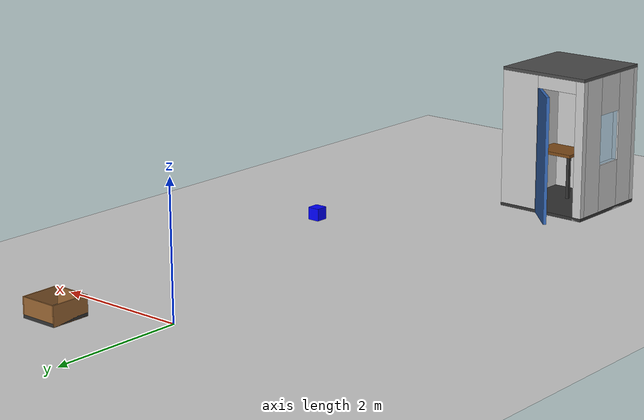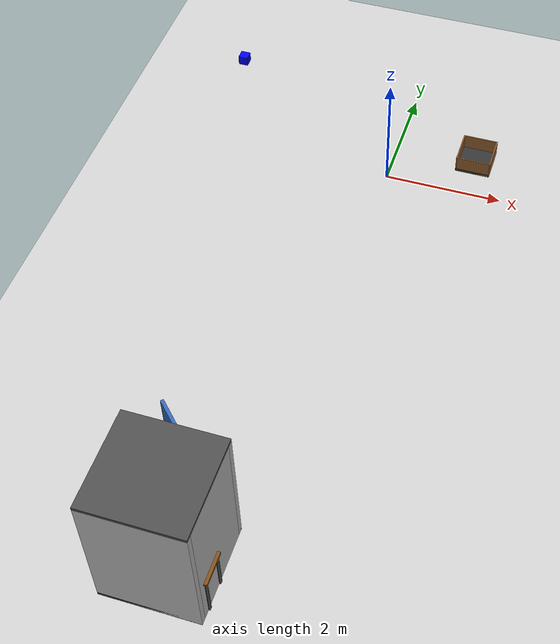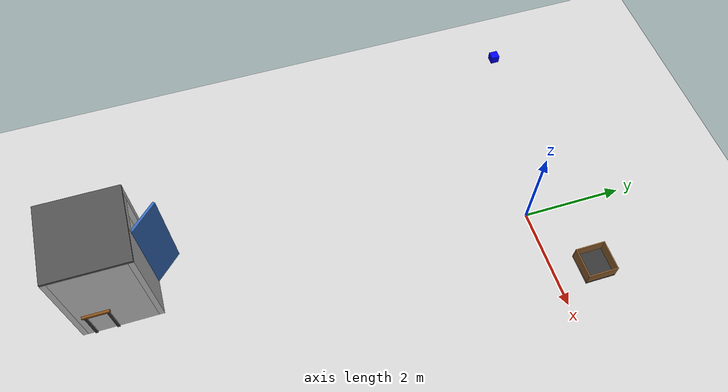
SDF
<sdf version="1.6">
 <world name="default">
  <gravity>0 0 -9.81</gravity>
  <light name="Warehouse_CeilingLight_003" type="point">
   <pose>0 0 9 0 0 0</pose>
   <diffuse>0.5 0.5 0.5 1</diffuse>
   <specular>0.2 0.2 0.2 1</specular>
   <attenuation>
    <range>800</range>
    <constant>0.2</constant>
    <linear>0.01</linear>
    <quadratic>0.001</quadratic>
   </attenuation>
   <direction>0.1 0.1 -1</direction>
  </light>
  <light type="directional" name="sun">
   <pose>0 0 10 0 0 0</pose>
   <diffuse>0.8 0.8 0.8 1</diffuse>
   <specular>0.2 0.2 0.2 1</specular>
   <attenuation>
    <range>1000</range>
    <constant>0.9</constant>
    <linear>0.01</linear>
    <quadratic>0.001</quadratic>
   </attenuation>
   <direction>-0.5 0.1 -0.9</direction>
  </light>
  <model name="ground_plane">
   <static>true</static>
   <link name="link">
    <collision name="collision"><geometry><plane><normal>0 0 1</normal></plane></geometry></collision>
    <visual name="visual">
     <geometry><plane><normal>0 0 1</normal><size>100 100</size></plane></geometry>
     <material>
      <ambient>0.8 0.8 0.8 1</ambient>
      <diffuse>0.8 0.8 0.8 1</diffuse>
      <specular>0.8 0.8 0.8 1</specular>
     </material>
    </visual>
   </link>
  </model>
  <include><uri>model://payload_box</uri><pose>-2.5 0.0 2.0 0 0 0</pose></include>
  <include><uri>model://receptacle_box</uri><name>receptacle_box</name><pose>1.4 0.8 0.0 0 0 0</pose></include>
  <include>
   <uri>model://sgabuzzino</uri>
   <name>il_mio_sgabuzzino_1</name>
   <pose>-0.8 -8.0 0 0 0 3.14</pose>
  </include>
 </world>
</sdf>

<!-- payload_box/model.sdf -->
<sdf version="1.6">
  <model name="payload_box">
      <static>false</static>
      <pose>0 0 0 0 0 0</pose>
      <link name="box_link">
        <gravity>true</gravity>
        <inertial>
          <mass>0.5</mass>
          <inertia>
            <ixx>0.001</ixx>
            <iyy>0.001</iyy>
            <izz>0.001</izz>
            <ixy>0.0</ixy>
            <ixz>0.0</ixz>
            <iyz>0.0</iyz>
          </inertia>
        </inertial>

        <collision name="collision">
          <geometry>
            <box><size>0.15 0.15 0.15</size></box>
          </geometry>
        </collision>

        <visual name="visual">
          <geometry>
            <box><size>0.15 0.15 0.15</size></box>
          </geometry>
          <material>
            <ambient>0 0 1 1</ambient>
            <diffuse>0 0 1 1</diffuse>
          </material>
        </visual>
      </link>
  </model>
</sdf>

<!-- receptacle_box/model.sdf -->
<sdf version="1.6">
  <model name="receptacle_box">
    <static>true</static>
    <link name="link">
      <pose>0 0 0 0 0 0</pose>

      <collision name="base_collision">
        <pose>0 0 0.025 0 0 0</pose>
        <geometry>
          <box>
            <size>0.6 0.6 0.05</size>
          </box>
        </geometry>
      </collision>
      <visual name="base_visual">
        <pose>0 0 0.025 0 0 0</pose>
        <geometry>
          <box>
            <size>0.6 0.6 0.05</size>
          </box>
        </geometry>
       <material>
          <ambient>0.2 0.2 0.2 1</ambient>
          <diffuse>0.2 0.2 0.2 1</diffuse>
          <specular>0.1 0.1 0.1 1</specular>
        </material>
      </visual>

      <collision name="wall1_collision">
        <pose>0.29 0 0.15 0 0 0</pose>
        <geometry>
          <box>
            <size>0.02 0.6 0.3</size>
          </box>
        </geometry>
      </collision>
      <visual name="wall1_visual">
        <pose>0.29 0 0.15 0 0 0</pose>
        <geometry>
          <box>
            <size>0.02 0.6 0.3</size>
          </box>
        </geometry>
        <material>
          <ambient>0.6 0.4 0.2 1</ambient>
          <diffuse>0.6 0.4 0.2 1</diffuse>
        </material>
      </visual>

      <collision name="wall2_collision">
        <pose>-0.29 0 0.15 0 0 0</pose>
        <geometry>
          <box>
            <size>0.02 0.6 0.3</size>
          </box>
        </geometry>
      </collision>
      <visual name="wall2_visual">
        <pose>-0.29 0 0.15 0 0 0</pose>
        <geometry>
          <box>
            <size>0.02 0.6 0.3</size>
          </box>
        </geometry>
        <material>
          <ambient>0.6 0.4 0.2 1</ambient>
          <diffuse>0.6 0.4 0.2 1</diffuse>
        </material>
      </visual>

      <collision name="wall3_collision">
        <pose>0 0.29 0.15 0 0 0</pose>
        <geometry>
          <box>
            <size>0.56 0.02 0.3</size>
          </box>
        </geometry>
      </collision>
      <visual name="wall3_visual">
        <pose>0 0.29 0.15 0 0 0</pose>
        <geometry>
          <box>
            <size>0.56 0.02 0.3</size>
          </box>
        </geometry>
        <material>
          <ambient>0.6 0.4 0.2 1</ambient>
          <diffuse>0.6 0.4 0.2 1</diffuse>
        </material>
      </visual>

      <collision name="wall4_collision">
        <pose>0 -0.29 0.15 0 0 0</pose>
        <geometry>
          <box>
            <size>0.56 0.02 0.3</size>
          </box>
        </geometry>
      </collision>
      <visual name="wall4_visual">
        <pose>0 -0.29 0.15 0 0 0</pose>
        <geometry>
          <box>
            <size>0.56 0.02 0.3</size>
          </box>
        </geometry>
        <material>
          <ambient>0.6 0.4 0.2 1</ambient>
          <diffuse>0.6 0.4 0.2 1</diffuse>
        </material>
      </visual>

    </link>
  </model>
</sdf>

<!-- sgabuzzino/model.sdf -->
<sdf version="1.6">
  <model name="sgabuzzino">
    <static>true</static>

    <link name="pavimento">
      <pose>0 0 0.025 0 0 0</pose>
      <collision name="collision"><geometry><box><size>1.5 1.5 0.05</size></box></geometry></collision>
      <visual name="visual">
        <geometry><box><size>1.5 1.5 0.05</size></box></geometry>
        <material><ambient>0.2 0.2 0.2 1</ambient><diffuse>0.2 0.2 0.2 1</diffuse></material>
      </visual>
    </link>

    <link name="tetto">
      <pose>0 0 2.225 0 0 0</pose>
      <collision name="collision"><geometry><box><size>1.5 1.5 0.05</size></box></geometry></collision>
      <visual name="visual">
        <geometry><box><size>1.5 1.5 0.05</size></box></geometry>
        <material><ambient>0.3 0.3 0.3 1</ambient><diffuse>0.3 0.3 0.3 1</diffuse></material>
      </visual>
    </link>

    <link name="muro_dietro">
      <pose>0 0.7 1.1 0 0 0</pose>
      <collision name="collision"><geometry><box><size>1.5 0.1 2.2</size></box></geometry></collision>
      <visual name="visual">
        <geometry><box><size>1.5 0.1 2.2</size></box></geometry>
        <material><ambient>0.8 0.8 0.8 1</ambient><diffuse>0.8 0.8 0.8 1</diffuse></material>
      </visual>
    </link>

    <link name="muro_sx">
      <pose>-0.7 0 1.1 0 0 0</pose>
      <collision name="collision"><geometry><box><size>0.1 1.3 2.2</size></box></geometry></collision>
      <visual name="visual">
        <geometry><box><size>0.1 1.3 2.2</size></box></geometry>
        <material><ambient>0.8 0.8 0.8 1</ambient><diffuse>0.8 0.8 0.8 1</diffuse></material>
      </visual>
    </link>

    <link name="muro_dx_pilastro_1">
      <pose>0.7 -0.45 1.1 0 0 0</pose>
      <visual name="visual"><geometry><box><size>0.1 0.4 2.2</size></box></geometry><material><ambient>0.8 0.8 0.8 1</ambient><diffuse>0.8 0.8 0.8 1</diffuse></material></visual>
      <collision name="collision"><geometry><box><size>0.1 0.4 2.2</size></box></geometry></collision>
    </link>
    <link name="muro_dx_pilastro_2">
      <pose>0.7 0.45 1.1 0 0 0</pose>
      <visual name="visual"><geometry><box><size>0.1 0.4 2.2</size></box></geometry><material><ambient>0.8 0.8 0.8 1</ambient><diffuse>0.8 0.8 0.8 1</diffuse></material></visual>
      <collision name="collision"><geometry><box><size>0.1 0.4 2.2</size></box></geometry></collision>
    </link>
    <link name="muro_dx_sotto_finestra">
      <pose>0.7 0 0.4 0 0 0</pose>
      <visual name="visual"><geometry><box><size>0.1 0.5 0.8</size></box></geometry><material><ambient>0.8 0.8 0.8 1</ambient><diffuse>0.8 0.8 0.8 1</diffuse></material></visual>
      <collision name="collision"><geometry><box><size>0.1 0.5 0.8</size></box></geometry></collision>
    </link>
    <link name="muro_dx_sopra_finestra">
      <pose>0.7 0 1.9 0 0 0</pose>
      <visual name="visual"><geometry><box><size>0.1 0.5 0.6</size></box></geometry><material><ambient>0.8 0.8 0.8 1</ambient><diffuse>0.8 0.8 0.8 1</diffuse></material></visual>
      <collision name="collision"><geometry><box><size>0.1 0.5 0.6</size></box></geometry></collision>
    </link>

    <link name="vetro_finestra">
      <pose>0.7 0 1.2 0 0 0</pose>
      <visual name="visual">
        <geometry><box><size>0.05 0.5 0.8</size></box></geometry>
        <material>
          <ambient>0.4 0.7 0.9 0.4</ambient>
          <diffuse>0.4 0.7 0.9 0.4</diffuse>
        </material>
        <transparency>0.6</transparency>
      </visual>
      <collision name="collision"><geometry><box><size>0.05 0.5 0.8</size></box></geometry></collision>
    </link>

    <link name="muro_frontale_sx">
      <pose>-0.425 -0.7 1.1 0 0 0</pose>
      <visual name="visual"><geometry><box><size>0.65 0.1 2.2</size></box></geometry><material><ambient>0.8 0.8 0.8 1</ambient><diffuse>0.8 0.8 0.8 1</diffuse></material></visual>
      <collision name="collision"><geometry><box><size>0.65 0.1 2.2</size></box></geometry></collision>
    </link>
    <link name="muro_frontale_dx">
      <pose>0.675 -0.7 1.1 0 0 0</pose>
      <visual name="visual"><geometry><box><size>0.15 0.1 2.2</size></box></geometry><material><ambient>0.8 0.8 0.8 1</ambient><diffuse>0.8 0.8 0.8 1</diffuse></material></visual>
      <collision name="collision"><geometry><box><size>0.15 0.1 2.2</size></box></geometry></collision>
    </link>
    <link name="cornice_porta">
      <pose>0.25 -0.7 2.1 0 0 0</pose>
      <visual name="visual"><geometry><box><size>0.7 0.1 0.2</size></box></geometry><material><ambient>0.8 0.8 0.8 1</ambient><diffuse>0.8 0.8 0.8 1</diffuse></material></visual>
      <collision name="collision"><geometry><box><size>0.7 0.1 0.2</size></box></geometry></collision>
    </link>

    <link name="porta">
      <pose>0.15 -0.95 1.0 0 0 -0.785</pose>
      <visual name="visual">
        <geometry><box><size>0.7 0.05 2.0</size></box></geometry>
        <material><ambient>0.2 0.4 0.7 1</ambient><diffuse>0.2 0.4 0.7 1</diffuse></material>
      </visual>
      <collision name="collision"><geometry><box><size>0.7 0.05 2.0</size></box></geometry></collision>
    </link>

    <link name="scrivania_top">
      <pose>-0.4 0.3 0.75 0 0 0</pose>
      <visual name="visual"><geometry><box><size>0.8 0.5 0.05</size></box></geometry><material><ambient>0.5 0.3 0.1 1</ambient><diffuse>0.5 0.3 0.1 1</diffuse></material></visual>
      <collision name="collision"><geometry><box><size>0.8 0.5 0.05</size></box></geometry></collision>
    </link>
    <link name="scrivania_gamba1">
      <pose>-0.75 0.5 0.375 0 0 0</pose>
      <visual name="visual"><geometry><box><size>0.05 0.05 0.75</size></box></geometry><material><ambient>0.2 0.2 0.2 1</ambient><diffuse>0.2 0.2 0.2 1</diffuse></material></visual>
    </link>
    <link name="scrivania_gamba2">
      <pose>-0.05 0.5 0.375 0 0 0</pose>
      <visual name="visual"><geometry><box><size>0.05 0.05 0.75</size></box></geometry><material><ambient>0.2 0.2 0.2 1</ambient><diffuse>0.2 0.2 0.2 1</diffuse></material></visual>
    </link>
    <link name="scrivania_gamba3">
      <pose>-0.75 0.1 0.375 0 0 0</pose>
      <visual name="visual"><geometry><box><size>0.05 0.05 0.75</size></box></geometry><material><ambient>0.2 0.2 0.2 1</ambient><diffuse>0.2 0.2 0.2 1</diffuse></material></visual>
    </link>
    <link name="scrivania_gamba4">
      <pose>-0.05 0.1 0.375 0 0 0</pose>
      <visual name="visual"><geometry><box><size>0.05 0.05 0.75</size></box></geometry><material><ambient>0.2 0.2 0.2 1</ambient><diffuse>0.2 0.2 0.2 1</diffuse></material></visual>
    </link>

  </model>
</sdf>
